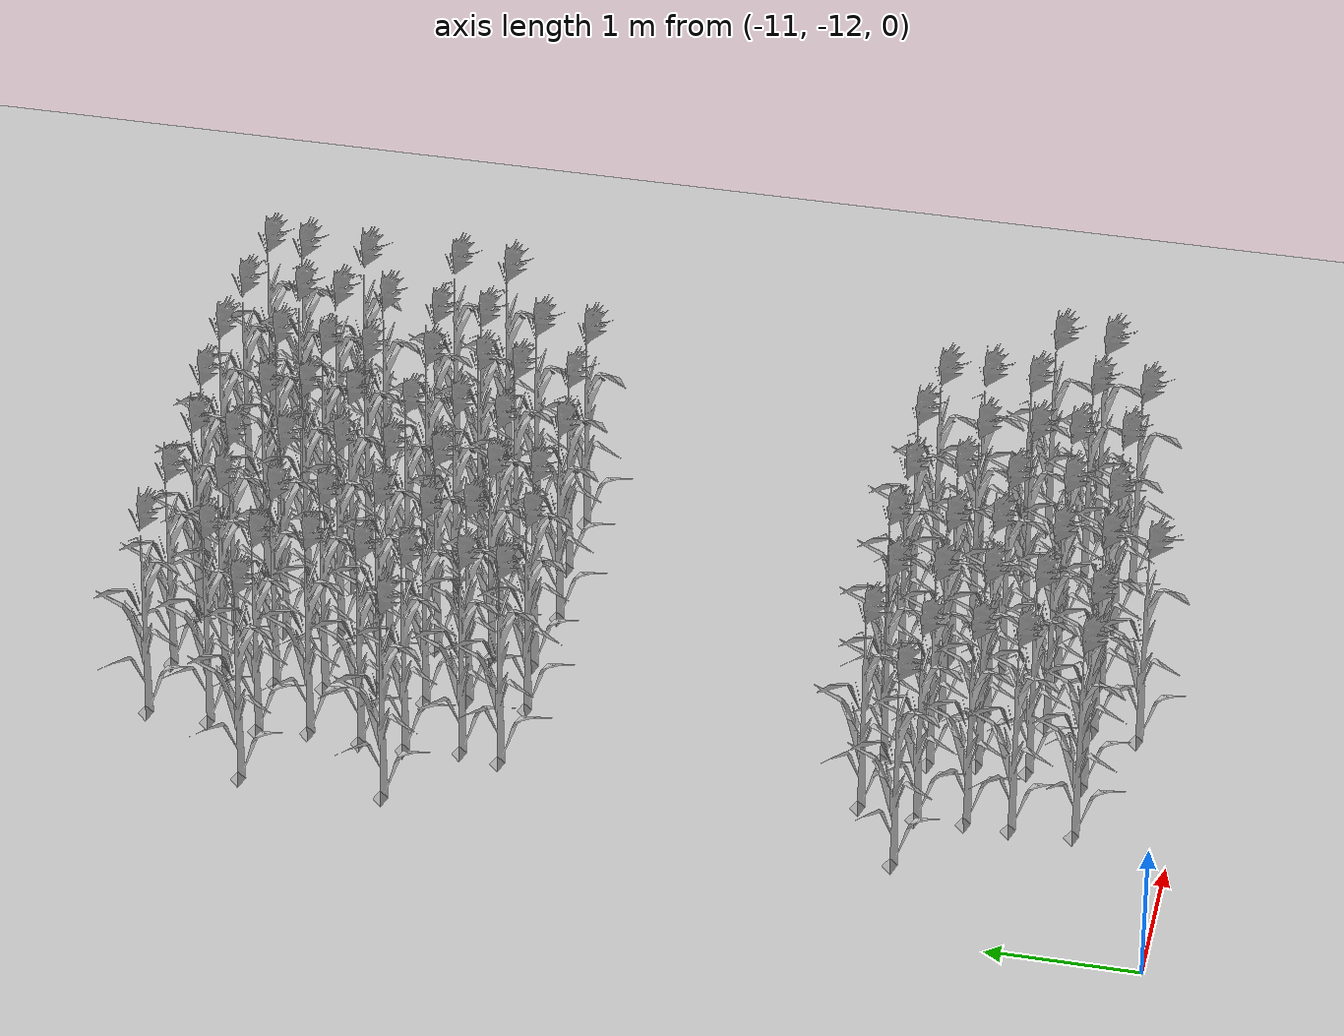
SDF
<sdf version="1.7">
 <world name="farmland_world">
  <model name="ground_plane">
   <static>1</static>
   <link name="link">
    <collision name="collision">
     <geometry><plane><normal>0 0 1</normal><size>40.0 40.0</size></plane></geometry>
     <surface><friction><ode><mu>100</mu><mu2>50</mu2></ode></friction></surface>
    </collision>
    <visual name="visual">
     <cast_shadows>0</cast_shadows>
     <geometry><plane><normal>0 0 1</normal><size>40.0 40.0</size></plane></geometry>
     <material>
      <script><uri>file://media/materials/scripts/gazebo.material</uri><name>Gazebo/Grey</name></script>
     </material>
    </visual>
   </link>
  </model>
  <model name="tree_3_2026">
   <static>1</static>
   <link name="link">
    <collision name="collision">
     <geometry><mesh><uri>model://Corn_low_poly/corn.obj</uri><scale>1 1 1</scale></mesh></geometry>
     <surface><friction><ode><mu>100</mu><mu2>50</mu2></ode></friction></surface>
    </collision>
    <visual name="visual">
     <geometry><mesh><uri>model://Corn_low_poly/corn.obj</uri><scale>1 1 1</scale></mesh></geometry>
    </visual>
   </link>
   <pose>-6.713987771388239 -11.040436678086664 0 0 0 0</pose>
  </model>
  <model name="tree_3_2027">
   <static>1</static>
   <link name="link">
    <collision name="collision">
     <geometry><mesh><uri>model://Corn_low_poly/corn.obj</uri><scale>1 1 1</scale></mesh></geometry>
     <surface><friction><ode><mu>100</mu><mu2>50</mu2></ode></friction></surface>
    </collision>
    <visual name="visual">
     <geometry><mesh><uri>model://Corn_low_poly/corn.obj</uri><scale>1 1 1</scale></mesh></geometry>
    </visual>
   </link>
   <pose>-7.170069629986875 -11.021712198344856 0 0 0 0</pose>
  </model>
  <model name="tree_3_2028">
   <static>1</static>
   <link name="link">
    <collision name="collision">
     <geometry><mesh><uri>model://Corn_low_poly/corn.obj</uri><scale>1 1 1</scale></mesh></geometry>
     <surface><friction><ode><mu>100</mu><mu2>50</mu2></ode></friction></surface>
    </collision>
    <visual name="visual">
     <geometry><mesh><uri>model://Corn_low_poly/corn.obj</uri><scale>1 1 1</scale></mesh></geometry>
    </visual>
   </link>
   <pose>-7.707092013171887 -10.965578937062764 0 0 0 0</pose>
  </model>
  <model name="tree_3_2029">
   <static>1</static>
   <link name="link">
    <collision name="collision">
     <geometry><mesh><uri>model://Corn_low_poly/corn.obj</uri><scale>1 1 1</scale></mesh></geometry>
     <surface><friction><ode><mu>100</mu><mu2>50</mu2></ode></friction></surface>
    </collision>
    <visual name="visual">
     <geometry><mesh><uri>model://Corn_low_poly/corn.obj</uri><scale>1 1 1</scale></mesh></geometry>
    </visual>
   </link>
   <pose>-8.223203388048246 -11.00556573251546 0 0 0 0</pose>
  </model>
  <model name="tree_3_2030">
   <static>1</static>
   <link name="link">
    <collision name="collision">
     <geometry><mesh><uri>model://Corn_low_poly/corn.obj</uri><scale>1 1 1</scale></mesh></geometry>
     <surface><friction><ode><mu>100</mu><mu2>50</mu2></ode></friction></surface>
    </collision>
    <visual name="visual">
     <geometry><mesh><uri>model://Corn_low_poly/corn.obj</uri><scale>1 1 1</scale></mesh></geometry>
    </visual>
   </link>
   <pose>-8.744473124421058 -11.017615286946793 0 0 0 0</pose>
  </model>
  <model name="tree_3_2031">
   <static>1</static>
   <link name="link">
    <collision name="collision">
     <geometry><mesh><uri>model://Corn_low_poly/corn.obj</uri><scale>1 1 1</scale></mesh></geometry>
     <surface><friction><ode><mu>100</mu><mu2>50</mu2></ode></friction></surface>
    </collision>
    <visual name="visual">
     <geometry><mesh><uri>model://Corn_low_poly/corn.obj</uri><scale>1 1 1</scale></mesh></geometry>
    </visual>
   </link>
   <pose>-9.233699887846186 -10.979449062698754 0 0 0 0</pose>
  </model>
  <model name="tree_3_2032">
   <static>1</static>
   <link name="link">
    <collision name="collision">
     <geometry><mesh><uri>model://Corn_low_poly/corn.obj</uri><scale>1 1 1</scale></mesh></geometry>
     <surface><friction><ode><mu>100</mu><mu2>50</mu2></ode></friction></surface>
    </collision>
    <visual name="visual">
     <geometry><mesh><uri>model://Corn_low_poly/corn.obj</uri><scale>1 1 1</scale></mesh></geometry>
    </visual>
   </link>
   <pose>-9.81466445602937 -10.958606718387514 0 0 0 0</pose>
  </model>
  <model name="tree_3_2061">
   <static>1</static>
   <link name="link">
    <collision name="collision">
     <geometry><mesh><uri>model://Corn_low_poly/corn.obj</uri><scale>1 1 1</scale></mesh></geometry>
     <surface><friction><ode><mu>100</mu><mu2>50</mu2></ode></friction></surface>
    </collision>
    <visual name="visual">
     <geometry><mesh><uri>model://Corn_low_poly/corn.obj</uri><scale>1 1 1</scale></mesh></geometry>
    </visual>
   </link>
   <pose>-7.187153272394503 -11.348321001129824 0 0 0 0</pose>
  </model>
  <model name="tree_3_2062">
   <static>1</static>
   <link name="link">
    <collision name="collision">
     <geometry><mesh><uri>model://Corn_low_poly/corn.obj</uri><scale>1 1 1</scale></mesh></geometry>
     <surface><friction><ode><mu>100</mu><mu2>50</mu2></ode></friction></surface>
    </collision>
    <visual name="visual">
     <geometry><mesh><uri>model://Corn_low_poly/corn.obj</uri><scale>1 1 1</scale></mesh></geometry>
    </visual>
   </link>
   <pose>-7.678289146353365 -11.296198535919972 0 0 0 0</pose>
  </model>
  <model name="tree_3_2063">
   <static>1</static>
   <link name="link">
    <collision name="collision">
     <geometry><mesh><uri>model://Corn_low_poly/corn.obj</uri><scale>1 1 1</scale></mesh></geometry>
     <surface><friction><ode><mu>100</mu><mu2>50</mu2></ode></friction></surface>
    </collision>
    <visual name="visual">
     <geometry><mesh><uri>model://Corn_low_poly/corn.obj</uri><scale>1 1 1</scale></mesh></geometry>
    </visual>
   </link>
   <pose>-8.268231560659562 -11.301532199227344 0 0 0 0</pose>
  </model>
  <model name="tree_3_2064">
   <static>1</static>
   <link name="link">
    <collision name="collision">
     <geometry><mesh><uri>model://Corn_low_poly/corn.obj</uri><scale>1 1 1</scale></mesh></geometry>
     <surface><friction><ode><mu>100</mu><mu2>50</mu2></ode></friction></surface>
    </collision>
    <visual name="visual">
     <geometry><mesh><uri>model://Corn_low_poly/corn.obj</uri><scale>1 1 1</scale></mesh></geometry>
    </visual>
   </link>
   <pose>-8.739041165692472 -11.327774644668105 0 0 0 0</pose>
  </model>
  <model name="tree_3_2065">
   <static>1</static>
   <link name="link">
    <collision name="collision">
     <geometry><mesh><uri>model://Corn_low_poly/corn.obj</uri><scale>1 1 1</scale></mesh></geometry>
     <surface><friction><ode><mu>100</mu><mu2>50</mu2></ode></friction></surface>
    </collision>
    <visual name="visual">
     <geometry><mesh><uri>model://Corn_low_poly/corn.obj</uri><scale>1 1 1</scale></mesh></geometry>
    </visual>
   </link>
   <pose>-9.31111151003318 -11.34614491399398 0 0 0 0</pose>
  </model>
  <model name="tree_3_2066">
   <static>1</static>
   <link name="link">
    <collision name="collision">
     <geometry><mesh><uri>model://Corn_low_poly/corn.obj</uri><scale>1 1 1</scale></mesh></geometry>
     <surface><friction><ode><mu>100</mu><mu2>50</mu2></ode></friction></surface>
    </collision>
    <visual name="visual">
     <geometry><mesh><uri>model://Corn_low_poly/corn.obj</uri><scale>1 1 1</scale></mesh></geometry>
    </visual>
   </link>
   <pose>-9.796232664142419 -11.363982110689113 0 0 0 0</pose>
  </model>
  <model name="tree_3_2098">
   <static>1</static>
   <link name="link">
    <collision name="collision">
     <geometry><mesh><uri>model://Corn_low_poly/corn.obj</uri><scale>1 1 1</scale></mesh></geometry>
     <surface><friction><ode><mu>100</mu><mu2>50</mu2></ode></friction></surface>
    </collision>
    <visual name="visual">
     <geometry><mesh><uri>model://Corn_low_poly/corn.obj</uri><scale>1 1 1</scale></mesh></geometry>
    </visual>
   </link>
   <pose>-8.784118833880223 -11.625639258244046 0 0 0 0</pose>
  </model>
  <model name="tree_3_2129">
   <static>1</static>
   <link name="link">
    <collision name="collision">
     <geometry><mesh><uri>model://Corn_low_poly/corn.obj</uri><scale>1 1 1</scale></mesh></geometry>
     <surface><friction><ode><mu>100</mu><mu2>50</mu2></ode></friction></surface>
    </collision>
    <visual name="visual">
     <geometry><mesh><uri>model://Corn_low_poly/corn.obj</uri><scale>1 1 1</scale></mesh></geometry>
    </visual>
   </link>
   <pose>-7.253003676641794 -10.032679340570365 0 0 0 0</pose>
  </model>
  <model name="tree_3_2130">
   <static>1</static>
   <link name="link">
    <collision name="collision">
     <geometry><mesh><uri>model://Corn_low_poly/corn.obj</uri><scale>1 1 1</scale></mesh></geometry>
     <surface><friction><ode><mu>100</mu><mu2>50</mu2></ode></friction></surface>
    </collision>
    <visual name="visual">
     <geometry><mesh><uri>model://Corn_low_poly/corn.obj</uri><scale>1 1 1</scale></mesh></geometry>
    </visual>
   </link>
   <pose>-7.698730288540326 -9.957208224281656 0 0 0 0</pose>
  </model>
  <model name="tree_3_2131">
   <static>1</static>
   <link name="link">
    <collision name="collision">
     <geometry><mesh><uri>model://Corn_low_poly/corn.obj</uri><scale>1 1 1</scale></mesh></geometry>
     <surface><friction><ode><mu>100</mu><mu2>50</mu2></ode></friction></surface>
    </collision>
    <visual name="visual">
     <geometry><mesh><uri>model://Corn_low_poly/corn.obj</uri><scale>1 1 1</scale></mesh></geometry>
    </visual>
   </link>
   <pose>-8.271461147682986 -9.981504382100185 0 0 0 0</pose>
  </model>
  <model name="tree_3_2132">
   <static>1</static>
   <link name="link">
    <collision name="collision">
     <geometry><mesh><uri>model://Corn_low_poly/corn.obj</uri><scale>1 1 1</scale></mesh></geometry>
     <surface><friction><ode><mu>100</mu><mu2>50</mu2></ode></friction></surface>
    </collision>
    <visual name="visual">
     <geometry><mesh><uri>model://Corn_low_poly/corn.obj</uri><scale>1 1 1</scale></mesh></geometry>
    </visual>
   </link>
   <pose>-8.772892968912764 -9.958078417165234 0 0 0 0</pose>
  </model>
  <model name="tree_3_2133">
   <static>1</static>
   <link name="link">
    <collision name="collision">
     <geometry><mesh><uri>model://Corn_low_poly/corn.obj</uri><scale>1 1 1</scale></mesh></geometry>
     <surface><friction><ode><mu>100</mu><mu2>50</mu2></ode></friction></surface>
    </collision>
    <visual name="visual">
     <geometry><mesh><uri>model://Corn_low_poly/corn.obj</uri><scale>1 1 1</scale></mesh></geometry>
    </visual>
   </link>
   <pose>-9.289754353603282 -10.04418401191558 0 0 0 0</pose>
  </model>
  <model name="tree_3_2134">
   <static>1</static>
   <link name="link">
    <collision name="collision">
     <geometry><mesh><uri>model://Corn_low_poly/corn.obj</uri><scale>1 1 1</scale></mesh></geometry>
     <surface><friction><ode><mu>100</mu><mu2>50</mu2></ode></friction></surface>
    </collision>
    <visual name="visual">
     <geometry><mesh><uri>model://Corn_low_poly/corn.obj</uri><scale>1 1 1</scale></mesh></geometry>
    </visual>
   </link>
   <pose>-9.777281978584496 -9.981790289452828 0 0 0 0</pose>
  </model>
  <model name="tree_3_2163">
   <static>1</static>
   <link name="link">
    <collision name="collision">
     <geometry><mesh><uri>model://Corn_low_poly/corn.obj</uri><scale>1 1 1</scale></mesh></geometry>
     <surface><friction><ode><mu>100</mu><mu2>50</mu2></ode></friction></surface>
    </collision>
    <visual name="visual">
     <geometry><mesh><uri>model://Corn_low_poly/corn.obj</uri><scale>1 1 1</scale></mesh></geometry>
    </visual>
   </link>
   <pose>-7.206512040298854 -10.31812870471933 0 0 0 0</pose>
  </model>
  <model name="tree_3_2164">
   <static>1</static>
   <link name="link">
    <collision name="collision">
     <geometry><mesh><uri>model://Corn_low_poly/corn.obj</uri><scale>1 1 1</scale></mesh></geometry>
     <surface><friction><ode><mu>100</mu><mu2>50</mu2></ode></friction></surface>
    </collision>
    <visual name="visual">
     <geometry><mesh><uri>model://Corn_low_poly/corn.obj</uri><scale>1 1 1</scale></mesh></geometry>
    </visual>
   </link>
   <pose>-7.765027463036141 -10.37106197165101 0 0 0 0</pose>
  </model>
  <model name="tree_3_2165">
   <static>1</static>
   <link name="link">
    <collision name="collision">
     <geometry><mesh><uri>model://Corn_low_poly/corn.obj</uri><scale>1 1 1</scale></mesh></geometry>
     <surface><friction><ode><mu>100</mu><mu2>50</mu2></ode></friction></surface>
    </collision>
    <visual name="visual">
     <geometry><mesh><uri>model://Corn_low_poly/corn.obj</uri><scale>1 1 1</scale></mesh></geometry>
    </visual>
   </link>
   <pose>-8.19258654004304 -10.299527062183751 0 0 0 0</pose>
  </model>
  <model name="tree_3_2166">
   <static>1</static>
   <link name="link">
    <collision name="collision">
     <geometry><mesh><uri>model://Corn_low_poly/corn.obj</uri><scale>1 1 1</scale></mesh></geometry>
     <surface><friction><ode><mu>100</mu><mu2>50</mu2></ode></friction></surface>
    </collision>
    <visual name="visual">
     <geometry><mesh><uri>model://Corn_low_poly/corn.obj</uri><scale>1 1 1</scale></mesh></geometry>
    </visual>
   </link>
   <pose>-8.755902247413959 -10.331962641836316 0 0 0 0</pose>
  </model>
  <model name="tree_3_2167">
   <static>1</static>
   <link name="link">
    <collision name="collision">
     <geometry><mesh><uri>model://Corn_low_poly/corn.obj</uri><scale>1 1 1</scale></mesh></geometry>
     <surface><friction><ode><mu>100</mu><mu2>50</mu2></ode></friction></surface>
    </collision>
    <visual name="visual">
     <geometry><mesh><uri>model://Corn_low_poly/corn.obj</uri><scale>1 1 1</scale></mesh></geometry>
    </visual>
   </link>
   <pose>-9.275298499650408 -10.341205168163617 0 0 0 0</pose>
  </model>
  <model name="tree_3_2168">
   <static>1</static>
   <link name="link">
    <collision name="collision">
     <geometry><mesh><uri>model://Corn_low_poly/corn.obj</uri><scale>1 1 1</scale></mesh></geometry>
     <surface><friction><ode><mu>100</mu><mu2>50</mu2></ode></friction></surface>
    </collision>
    <visual name="visual">
     <geometry><mesh><uri>model://Corn_low_poly/corn.obj</uri><scale>1 1 1</scale></mesh></geometry>
    </visual>
   </link>
   <pose>-9.822250675962518 -10.349644332923527 0 0 0 0</pose>
  </model>
  <model name="tree_3_2169">
   <static>1</static>
   <link name="link">
    <collision name="collision">
     <geometry><mesh><uri>model://Corn_low_poly/corn.obj</uri><scale>1 1 1</scale></mesh></geometry>
     <surface><friction><ode><mu>100</mu><mu2>50</mu2></ode></friction></surface>
    </collision>
    <visual name="visual">
     <geometry><mesh><uri>model://Corn_low_poly/corn.obj</uri><scale>1 1 1</scale></mesh></geometry>
    </visual>
   </link>
   <pose>-10.289452895367786 -10.281471923795298 0 0 0 0</pose>
  </model>
  <model name="tree_3_2196">
   <static>1</static>
   <link name="link">
    <collision name="collision">
     <geometry><mesh><uri>model://Corn_low_poly/corn.obj</uri><scale>1 1 1</scale></mesh></geometry>
     <surface><friction><ode><mu>100</mu><mu2>50</mu2></ode></friction></surface>
    </collision>
    <visual name="visual">
     <geometry><mesh><uri>model://Corn_low_poly/corn.obj</uri><scale>1 1 1</scale></mesh></geometry>
    </visual>
   </link>
   <pose>-6.723077463601715 -10.709334611375617 0 0 0 0</pose>
  </model>
  <model name="tree_3_2197">
   <static>1</static>
   <link name="link">
    <collision name="collision">
     <geometry><mesh><uri>model://Corn_low_poly/corn.obj</uri><scale>1 1 1</scale></mesh></geometry>
     <surface><friction><ode><mu>100</mu><mu2>50</mu2></ode></friction></surface>
    </collision>
    <visual name="visual">
     <geometry><mesh><uri>model://Corn_low_poly/corn.obj</uri><scale>1 1 1</scale></mesh></geometry>
    </visual>
   </link>
   <pose>-7.21793926798852 -10.622178567975562 0 0 0 0</pose>
  </model>
  <model name="tree_3_2198">
   <static>1</static>
   <link name="link">
    <collision name="collision">
     <geometry><mesh><uri>model://Corn_low_poly/corn.obj</uri><scale>1 1 1</scale></mesh></geometry>
     <surface><friction><ode><mu>100</mu><mu2>50</mu2></ode></friction></surface>
    </collision>
    <visual name="visual">
     <geometry><mesh><uri>model://Corn_low_poly/corn.obj</uri><scale>1 1 1</scale></mesh></geometry>
    </visual>
   </link>
   <pose>-7.731044608758324 -10.711212221169795 0 0 0 0</pose>
  </model>
  <model name="tree_3_2199">
   <static>1</static>
   <link name="link">
    <collision name="collision">
     <geometry><mesh><uri>model://Corn_low_poly/corn.obj</uri><scale>1 1 1</scale></mesh></geometry>
     <surface><friction><ode><mu>100</mu><mu2>50</mu2></ode></friction></surface>
    </collision>
    <visual name="visual">
     <geometry><mesh><uri>model://Corn_low_poly/corn.obj</uri><scale>1 1 1</scale></mesh></geometry>
    </visual>
   </link>
   <pose>-8.250087386351218 -10.645200546693358 0 0 0 0</pose>
  </model>
  <model name="tree_3_2200">
   <static>1</static>
   <link name="link">
    <collision name="collision">
     <geometry><mesh><uri>model://Corn_low_poly/corn.obj</uri><scale>1 1 1</scale></mesh></geometry>
     <surface><friction><ode><mu>100</mu><mu2>50</mu2></ode></friction></surface>
    </collision>
    <visual name="visual">
     <geometry><mesh><uri>model://Corn_low_poly/corn.obj</uri><scale>1 1 1</scale></mesh></geometry>
    </visual>
   </link>
   <pose>-8.710291079633667 -10.621806189473489 0 0 0 0</pose>
  </model>
  <model name="tree_3_2201">
   <static>1</static>
   <link name="link">
    <collision name="collision">
     <geometry><mesh><uri>model://Corn_low_poly/corn.obj</uri><scale>1 1 1</scale></mesh></geometry>
     <surface><friction><ode><mu>100</mu><mu2>50</mu2></ode></friction></surface>
    </collision>
    <visual name="visual">
     <geometry><mesh><uri>model://Corn_low_poly/corn.obj</uri><scale>1 1 1</scale></mesh></geometry>
    </visual>
   </link>
   <pose>-9.226956009412119 -10.650704738698392 0 0 0 0</pose>
  </model>
  <model name="tree_3_2202">
   <static>1</static>
   <link name="link">
    <collision name="collision">
     <geometry><mesh><uri>model://Corn_low_poly/corn.obj</uri><scale>1 1 1</scale></mesh></geometry>
     <surface><friction><ode><mu>100</mu><mu2>50</mu2></ode></friction></surface>
    </collision>
    <visual name="visual">
     <geometry><mesh><uri>model://Corn_low_poly/corn.obj</uri><scale>1 1 1</scale></mesh></geometry>
    </visual>
   </link>
   <pose>-9.806422924225053 -10.668963463028167 0 0 0 0</pose>
  </model>
  <model name="tree_3_2230">
   <static>1</static>
   <link name="link">
    <collision name="collision">
     <geometry><mesh><uri>model://Corn_low_poly/corn.obj</uri><scale>1 1 1</scale></mesh></geometry>
     <surface><friction><ode><mu>100</mu><mu2>50</mu2></ode></friction></surface>
    </collision>
    <visual name="visual">
     <geometry><mesh><uri>model://Corn_low_poly/corn.obj</uri><scale>1 1 1</scale></mesh></geometry>
    </visual>
   </link>
   <pose>-6.698770898212721 -7.0135309337105705 0 0 0 0</pose>
  </model>
  <model name="tree_3_2231">
   <static>1</static>
   <link name="link">
    <collision name="collision">
     <geometry><mesh><uri>model://Corn_low_poly/corn.obj</uri><scale>1 1 1</scale></mesh></geometry>
     <surface><friction><ode><mu>100</mu><mu2>50</mu2></ode></friction></surface>
    </collision>
    <visual name="visual">
     <geometry><mesh><uri>model://Corn_low_poly/corn.obj</uri><scale>1 1 1</scale></mesh></geometry>
    </visual>
   </link>
   <pose>-7.226326635829651 -6.956767826596275 0 0 0 0</pose>
  </model>
  <model name="tree_3_2232">
   <static>1</static>
   <link name="link">
    <collision name="collision">
     <geometry><mesh><uri>model://Corn_low_poly/corn.obj</uri><scale>1 1 1</scale></mesh></geometry>
     <surface><friction><ode><mu>100</mu><mu2>50</mu2></ode></friction></surface>
    </collision>
    <visual name="visual">
     <geometry><mesh><uri>model://Corn_low_poly/corn.obj</uri><scale>1 1 1</scale></mesh></geometry>
    </visual>
   </link>
   <pose>-7.69813619342048 -7.04262959539145 0 0 0 0</pose>
  </model>
  <model name="tree_3_2233">
   <static>1</static>
   <link name="link">
    <collision name="collision">
     <geometry><mesh><uri>model://Corn_low_poly/corn.obj</uri><scale>1 1 1</scale></mesh></geometry>
     <surface><friction><ode><mu>100</mu><mu2>50</mu2></ode></friction></surface>
    </collision>
    <visual name="visual">
     <geometry><mesh><uri>model://Corn_low_poly/corn.obj</uri><scale>1 1 1</scale></mesh></geometry>
    </visual>
   </link>
   <pose>-8.198979463050549 -6.990502138744421 0 0 0 0</pose>
  </model>
  <model name="tree_3_2234">
   <static>1</static>
   <link name="link">
    <collision name="collision">
     <geometry><mesh><uri>model://Corn_low_poly/corn.obj</uri><scale>1 1 1</scale></mesh></geometry>
     <surface><friction><ode><mu>100</mu><mu2>50</mu2></ode></friction></surface>
    </collision>
    <visual name="visual">
     <geometry><mesh><uri>model://Corn_low_poly/corn.obj</uri><scale>1 1 1</scale></mesh></geometry>
    </visual>
   </link>
   <pose>-8.751375531219429 -6.9866231152696034 0 0 0 0</pose>
  </model>
  <model name="tree_3_2235">
   <static>1</static>
   <link name="link">
    <collision name="collision">
     <geometry><mesh><uri>model://Corn_low_poly/corn.obj</uri><scale>1 1 1</scale></mesh></geometry>
     <surface><friction><ode><mu>100</mu><mu2>50</mu2></ode></friction></surface>
    </collision>
    <visual name="visual">
     <geometry><mesh><uri>model://Corn_low_poly/corn.obj</uri><scale>1 1 1</scale></mesh></geometry>
    </visual>
   </link>
   <pose>-9.303486657886475 -7.032187139929857 0 0 0 0</pose>
  </model>
  <model name="tree_3_2236">
   <static>1</static>
   <link name="link">
    <collision name="collision">
     <geometry><mesh><uri>model://Corn_low_poly/corn.obj</uri><scale>1 1 1</scale></mesh></geometry>
     <surface><friction><ode><mu>100</mu><mu2>50</mu2></ode></friction></surface>
    </collision>
    <visual name="visual">
     <geometry><mesh><uri>model://Corn_low_poly/corn.obj</uri><scale>1 1 1</scale></mesh></geometry>
    </visual>
   </link>
   <pose>-9.79878532255996 -7.009020684361177 0 0 0 0</pose>
  </model>
  <model name="tree_3_2237">
   <static>1</static>
   <link name="link">
    <collision name="collision">
     <geometry><mesh><uri>model://Corn_low_poly/corn.obj</uri><scale>1 1 1</scale></mesh></geometry>
     <surface><friction><ode><mu>100</mu><mu2>50</mu2></ode></friction></surface>
    </collision>
    <visual name="visual">
     <geometry><mesh><uri>model://Corn_low_poly/corn.obj</uri><scale>1 1 1</scale></mesh></geometry>
    </visual>
   </link>
   <pose>-10.286600134505534 -6.9792327969359675 0 0 0 0</pose>
  </model>
  <model name="tree_3_2265">
   <static>1</static>
   <link name="link">
    <collision name="collision">
     <geometry><mesh><uri>model://Corn_low_poly/corn.obj</uri><scale>1 1 1</scale></mesh></geometry>
     <surface><friction><ode><mu>100</mu><mu2>50</mu2></ode></friction></surface>
    </collision>
    <visual name="visual">
     <geometry><mesh><uri>model://Corn_low_poly/corn.obj</uri><scale>1 1 1</scale></mesh></geometry>
    </visual>
   </link>
   <pose>-7.25311876452878 -7.331419577621844 0 0 0 0</pose>
  </model>
  <model name="tree_3_2266">
   <static>1</static>
   <link name="link">
    <collision name="collision">
     <geometry><mesh><uri>model://Corn_low_poly/corn.obj</uri><scale>1 1 1</scale></mesh></geometry>
     <surface><friction><ode><mu>100</mu><mu2>50</mu2></ode></friction></surface>
    </collision>
    <visual name="visual">
     <geometry><mesh><uri>model://Corn_low_poly/corn.obj</uri><scale>1 1 1</scale></mesh></geometry>
    </visual>
   </link>
   <pose>-7.74477911115244 -7.295107528703173 0 0 0 0</pose>
  </model>
  <model name="tree_3_2267">
   <static>1</static>
   <link name="link">
    <collision name="collision">
     <geometry><mesh><uri>model://Corn_low_poly/corn.obj</uri><scale>1 1 1</scale></mesh></geometry>
     <surface><friction><ode><mu>100</mu><mu2>50</mu2></ode></friction></surface>
    </collision>
    <visual name="visual">
     <geometry><mesh><uri>model://Corn_low_poly/corn.obj</uri><scale>1 1 1</scale></mesh></geometry>
    </visual>
   </link>
   <pose>-8.286075267826892 -7.298568402195418 0 0 0 0</pose>
  </model>
  <model name="tree_3_2268">
   <static>1</static>
   <link name="link">
    <collision name="collision">
     <geometry><mesh><uri>model://Corn_low_poly/corn.obj</uri><scale>1 1 1</scale></mesh></geometry>
     <surface><friction><ode><mu>100</mu><mu2>50</mu2></ode></friction></surface>
    </collision>
    <visual name="visual">
     <geometry><mesh><uri>model://Corn_low_poly/corn.obj</uri><scale>1 1 1</scale></mesh></geometry>
    </visual>
   </link>
   <pose>-8.789255988396633 -7.356927621319704 0 0 0 0</pose>
  </model>
  <model name="tree_3_2269">
   <static>1</static>
   <link name="link">
    <collision name="collision">
     <geometry><mesh><uri>model://Corn_low_poly/corn.obj</uri><scale>1 1 1</scale></mesh></geometry>
     <surface><friction><ode><mu>100</mu><mu2>50</mu2></ode></friction></surface>
    </collision>
    <visual name="visual">
     <geometry><mesh><uri>model://Corn_low_poly/corn.obj</uri><scale>1 1 1</scale></mesh></geometry>
    </visual>
   </link>
   <pose>-9.230324422350998 -7.302117422503469 0 0 0 0</pose>
  </model>
  <model name="tree_3_2270">
   <static>1</static>
   <link name="link">
    <collision name="collision">
     <geometry><mesh><uri>model://Corn_low_poly/corn.obj</uri><scale>1 1 1</scale></mesh></geometry>
     <surface><friction><ode><mu>100</mu><mu2>50</mu2></ode></friction></surface>
    </collision>
    <visual name="visual">
     <geometry><mesh><uri>model://Corn_low_poly/corn.obj</uri><scale>1 1 1</scale></mesh></geometry>
    </visual>
   </link>
   <pose>-9.752435112883116 -7.374505249193505 0 0 0 0</pose>
  </model>
  <model name="tree_3_2299">
   <static>1</static>
   <link name="link">
    <collision name="collision">
     <geometry><mesh><uri>model://Corn_low_poly/corn.obj</uri><scale>1 1 1</scale></mesh></geometry>
     <surface><friction><ode><mu>100</mu><mu2>50</mu2></ode></friction></surface>
    </collision>
    <visual name="visual">
     <geometry><mesh><uri>model://Corn_low_poly/corn.obj</uri><scale>1 1 1</scale></mesh></geometry>
    </visual>
   </link>
   <pose>-7.261861514970897 -7.672763095786835 0 0 0 0</pose>
  </model>
  <model name="tree_3_2300">
   <static>1</static>
   <link name="link">
    <collision name="collision">
     <geometry><mesh><uri>model://Corn_low_poly/corn.obj</uri><scale>1 1 1</scale></mesh></geometry>
     <surface><friction><ode><mu>100</mu><mu2>50</mu2></ode></friction></surface>
    </collision>
    <visual name="visual">
     <geometry><mesh><uri>model://Corn_low_poly/corn.obj</uri><scale>1 1 1</scale></mesh></geometry>
    </visual>
   </link>
   <pose>-7.761879935347265 -7.657065346063629 0 0 0 0</pose>
  </model>
  <model name="tree_3_2301">
   <static>1</static>
   <link name="link">
    <collision name="collision">
     <geometry><mesh><uri>model://Corn_low_poly/corn.obj</uri><scale>1 1 1</scale></mesh></geometry>
     <surface><friction><ode><mu>100</mu><mu2>50</mu2></ode></friction></surface>
    </collision>
    <visual name="visual">
     <geometry><mesh><uri>model://Corn_low_poly/corn.obj</uri><scale>1 1 1</scale></mesh></geometry>
    </visual>
   </link>
   <pose>-8.282583834543074 -7.704041617344423 0 0 0 0</pose>
  </model>
  <model name="tree_3_2302">
   <static>1</static>
   <link name="link">
    <collision name="collision">
     <geometry><mesh><uri>model://Corn_low_poly/corn.obj</uri><scale>1 1 1</scale></mesh></geometry>
     <surface><friction><ode><mu>100</mu><mu2>50</mu2></ode></friction></surface>
    </collision>
    <visual name="visual">
     <geometry><mesh><uri>model://Corn_low_poly/corn.obj</uri><scale>1 1 1</scale></mesh></geometry>
    </visual>
   </link>
   <pose>-8.798758004144842 -7.644634693590907 0 0 0 0</pose>
  </model>
  <model name="tree_3_2303">
   <static>1</static>
   <link name="link">
    <collision name="collision">
     <geometry><mesh><uri>model://Corn_low_poly/corn.obj</uri><scale>1 1 1</scale></mesh></geometry>
     <surface><friction><ode><mu>100</mu><mu2>50</mu2></ode></friction></surface>
    </collision>
    <visual name="visual">
     <geometry><mesh><uri>model://Corn_low_poly/corn.obj</uri><scale>1 1 1</scale></mesh></geometry>
    </visual>
   </link>
   <pose>-9.248127139442216 -7.69521689688319 0 0 0 0</pose>
  </model>
  <model name="tree_3_2304">
   <static>1</static>
   <link name="link">
    <collision name="collision">
     <geometry><mesh><uri>model://Corn_low_poly/corn.obj</uri><scale>1 1 1</scale></mesh></geometry>
     <surface><friction><ode><mu>100</mu><mu2>50</mu2></ode></friction></surface>
    </collision>
    <visual name="visual">
     <geometry><mesh><uri>model://Corn_low_poly/corn.obj</uri><scale>1 1 1</scale></mesh></geometry>
    </visual>
   </link>
   <pose>-9.802273474081025 -7.63698740169789 0 0 0 0</pose>
  </model>
  <model name="tree_3_2332">
   <static>1</static>
   <link name="link">
    <collision name="collision">
     <geometry><mesh><uri>model://Corn_low_poly/corn.obj</uri><scale>1 1 1</scale></mesh></geometry>
     <surface><friction><ode><mu>100</mu><mu2>50</mu2></ode></friction></surface>
    </collision>
    <visual name="visual">
     <geometry><mesh><uri>model://Corn_low_poly/corn.obj</uri><scale>1 1 1</scale></mesh></geometry>
    </visual>
   </link>
   <pose>-6.724908936228364 -6.042613655115731 0 0 0 0</pose>
  </model>
  <model name="tree_3_2333">
   <static>1</static>
   <link name="link">
    <collision name="collision">
     <geometry><mesh><uri>model://Corn_low_poly/corn.obj</uri><scale>1 1 1</scale></mesh></geometry>
     <surface><friction><ode><mu>100</mu><mu2>50</mu2></ode></friction></surface>
    </collision>
    <visual name="visual">
     <geometry><mesh><uri>model://Corn_low_poly/corn.obj</uri><scale>1 1 1</scale></mesh></geometry>
    </visual>
   </link>
   <pose>-7.18111789514575 -5.961812313448463 0 0 0 0</pose>
  </model>
  <model name="tree_3_2334">
   <static>1</static>
   <link name="link">
    <collision name="collision">
     <geometry><mesh><uri>model://Corn_low_poly/corn.obj</uri><scale>1 1 1</scale></mesh></geometry>
     <surface><friction><ode><mu>100</mu><mu2>50</mu2></ode></friction></surface>
    </collision>
    <visual name="visual">
     <geometry><mesh><uri>model://Corn_low_poly/corn.obj</uri><scale>1 1 1</scale></mesh></geometry>
    </visual>
   </link>
   <pose>-7.720472444700468 -5.996980003184679 0 0 0 0</pose>
  </model>
  <model name="tree_3_2335">
   <static>1</static>
   <link name="link">
    <collision name="collision">
     <geometry><mesh><uri>model://Corn_low_poly/corn.obj</uri><scale>1 1 1</scale></mesh></geometry>
     <surface><friction><ode><mu>100</mu><mu2>50</mu2></ode></friction></surface>
    </collision>
    <visual name="visual">
     <geometry><mesh><uri>model://Corn_low_poly/corn.obj</uri><scale>1 1 1</scale></mesh></geometry>
    </visual>
   </link>
   <pose>-8.198766572140272 -5.978488704130343 0 0 0 0</pose>
  </model>
  <model name="tree_3_2336">
   <static>1</static>
   <link name="link">
    <collision name="collision">
     <geometry><mesh><uri>model://Corn_low_poly/corn.obj</uri><scale>1 1 1</scale></mesh></geometry>
     <surface><friction><ode><mu>100</mu><mu2>50</mu2></ode></friction></surface>
    </collision>
    <visual name="visual">
     <geometry><mesh><uri>model://Corn_low_poly/corn.obj</uri><scale>1 1 1</scale></mesh></geometry>
    </visual>
   </link>
   <pose>-8.774139729727725 -5.972468023247055 0 0 0 0</pose>
  </model>
  <model name="tree_3_2337">
   <static>1</static>
   <link name="link">
    <collision name="collision">
     <geometry><mesh><uri>model://Corn_low_poly/corn.obj</uri><scale>1 1 1</scale></mesh></geometry>
     <surface><friction><ode><mu>100</mu><mu2>50</mu2></ode></friction></surface>
    </collision>
    <visual name="visual">
     <geometry><mesh><uri>model://Corn_low_poly/corn.obj</uri><scale>1 1 1</scale></mesh></geometry>
    </visual>
   </link>
   <pose>-9.305118791070297 -6.035673815797491 0 0 0 0</pose>
  </model>
  <model name="tree_3_2338">
   <static>1</static>
   <link name="link">
    <collision name="collision">
     <geometry><mesh><uri>model://Corn_low_poly/corn.obj</uri><scale>1 1 1</scale></mesh></geometry>
     <surface><friction><ode><mu>100</mu><mu2>50</mu2></ode></friction></surface>
    </collision>
    <visual name="visual">
     <geometry><mesh><uri>model://Corn_low_poly/corn.obj</uri><scale>1 1 1</scale></mesh></geometry>
    </visual>
   </link>
   <pose>-9.796173830188682 -6.036012532074695 0 0 0 0</pose>
  </model>
  <model name="tree_3_2339">
   <static>1</static>
   <link name="link">
    <collision name="collision">
     <geometry><mesh><uri>model://Corn_low_poly/corn.obj</uri><scale>1 1 1</scale></mesh></geometry>
     <surface><friction><ode><mu>100</mu><mu2>50</mu2></ode></friction></surface>
    </collision>
    <visual name="visual">
     <geometry><mesh><uri>model://Corn_low_poly/corn.obj</uri><scale>1 1 1</scale></mesh></geometry>
    </visual>
   </link>
   <pose>-10.28055702676481 -6.040541266310699 0 0 0 0</pose>
  </model>
  <model name="tree_3_2367">
   <static>1</static>
   <link name="link">
    <collision name="collision">
     <geometry><mesh><uri>model://Corn_low_poly/corn.obj</uri><scale>1 1 1</scale></mesh></geometry>
     <surface><friction><ode><mu>100</mu><mu2>50</mu2></ode></friction></surface>
    </collision>
    <visual name="visual">
     <geometry><mesh><uri>model://Corn_low_poly/corn.obj</uri><scale>1 1 1</scale></mesh></geometry>
    </visual>
   </link>
   <pose>-7.172059517086976 -6.280381060710417 0 0 0 0</pose>
  </model>
  <model name="tree_3_2368">
   <static>1</static>
   <link name="link">
    <collision name="collision">
     <geometry><mesh><uri>model://Corn_low_poly/corn.obj</uri><scale>1 1 1</scale></mesh></geometry>
     <surface><friction><ode><mu>100</mu><mu2>50</mu2></ode></friction></surface>
    </collision>
    <visual name="visual">
     <geometry><mesh><uri>model://Corn_low_poly/corn.obj</uri><scale>1 1 1</scale></mesh></geometry>
    </visual>
   </link>
   <pose>-7.742131804847298 -6.288954924029342 0 0 0 0</pose>
  </model>
  <model name="tree_3_2369">
   <static>1</static>
   <link name="link">
    <collision name="collision">
     <geometry><mesh><uri>model://Corn_low_poly/corn.obj</uri><scale>1 1 1</scale></mesh></geometry>
     <surface><friction><ode><mu>100</mu><mu2>50</mu2></ode></friction></surface>
    </collision>
    <visual name="visual">
     <geometry><mesh><uri>model://Corn_low_poly/corn.obj</uri><scale>1 1 1</scale></mesh></geometry>
    </visual>
   </link>
   <pose>-8.221603340540883 -6.296085204643022 0 0 0 0</pose>
  </model>
  <model name="tree_3_2370">
   <static>1</static>
   <link name="link">
    <collision name="collision">
     <geometry><mesh><uri>model://Corn_low_poly/corn.obj</uri><scale>1 1 1</scale></mesh></geometry>
     <surface><friction><ode><mu>100</mu><mu2>50</mu2></ode></friction></surface>
    </collision>
    <visual name="visual">
     <geometry><mesh><uri>model://Corn_low_poly/corn.obj</uri><scale>1 1 1</scale></mesh></geometry>
    </visual>
   </link>
   <pose>-8.721454925598396 -6.3314944267171915 0 0 0 0</pose>
  </model>
  <model name="tree_3_2371">
   <static>1</static>
   <link name="link">
    <collision name="collision">
     <geometry><mesh><uri>model://Corn_low_poly/corn.obj</uri><scale>1 1 1</scale></mesh></geometry>
     <surface><friction><ode><mu>100</mu><mu2>50</mu2></ode></friction></surface>
    </collision>
    <visual name="visual">
     <geometry><mesh><uri>model://Corn_low_poly/corn.obj</uri><scale>1 1 1</scale></mesh></geometry>
    </visual>
   </link>
   <pose>-9.29429845984116 -6.358931774829207 0 0 0 0</pose>
  </model>
  <model name="tree_3_2372">
   <static>1</static>
   <link name="link">
    <collision name="collision">
     <geometry><mesh><uri>model://Corn_low_poly/corn.obj</uri><scale>1 1 1</scale></mesh></geometry>
     <surface><friction><ode><mu>100</mu><mu2>50</mu2></ode></friction></surface>
    </collision>
    <visual name="visual">
     <geometry><mesh><uri>model://Corn_low_poly/corn.obj</uri><scale>1 1 1</scale></mesh></geometry>
    </visual>
   </link>
   <pose>-9.751729188099102 -6.368948132573094 0 0 0 0</pose>
  </model>
  <model name="tree_3_2400">
   <static>1</static>
   <link name="link">
    <collision name="collision">
     <geometry><mesh><uri>model://Corn_low_poly/corn.obj</uri><scale>1 1 1</scale></mesh></geometry>
     <surface><friction><ode><mu>100</mu><mu2>50</mu2></ode></friction></surface>
    </collision>
    <visual name="visual">
     <geometry><mesh><uri>model://Corn_low_poly/corn.obj</uri><scale>1 1 1</scale></mesh></geometry>
    </visual>
   </link>
   <pose>-6.68513019879895 -6.653154342249386 0 0 0 0</pose>
  </model>
  <model name="tree_3_2401">
   <static>1</static>
   <link name="link">
    <collision name="collision">
     <geometry><mesh><uri>model://Corn_low_poly/corn.obj</uri><scale>1 1 1</scale></mesh></geometry>
     <surface><friction><ode><mu>100</mu><mu2>50</mu2></ode></friction></surface>
    </collision>
    <visual name="visual">
     <geometry><mesh><uri>model://Corn_low_poly/corn.obj</uri><scale>1 1 1</scale></mesh></geometry>
    </visual>
   </link>
   <pose>-7.250823782924779 -6.646526707772338 0 0 0 0</pose>
  </model>
  <model name="tree_3_2402">
   <static>1</static>
   <link name="link">
    <collision name="collision">
     <geometry><mesh><uri>model://Corn_low_poly/corn.obj</uri><scale>1 1 1</scale></mesh></geometry>
     <surface><friction><ode><mu>100</mu><mu2>50</mu2></ode></friction></surface>
    </collision>
    <visual name="visual">
     <geometry><mesh><uri>model://Corn_low_poly/corn.obj</uri><scale>1 1 1</scale></mesh></geometry>
    </visual>
   </link>
   <pose>-7.711269660451734 -6.694657048765907 0 0 0 0</pose>
  </model>
  <model name="tree_3_2403">
   <static>1</static>
   <link name="link">
    <collision name="collision">
     <geometry><mesh><uri>model://Corn_low_poly/corn.obj</uri><scale>1 1 1</scale></mesh></geometry>
     <surface><friction><ode><mu>100</mu><mu2>50</mu2></ode></friction></surface>
    </collision>
    <visual name="visual">
     <geometry><mesh><uri>model://Corn_low_poly/corn.obj</uri><scale>1 1 1</scale></mesh></geometry>
    </visual>
   </link>
   <pose>-8.242475350058275 -6.676348345518365 0 0 0 0</pose>
  </model>
  <model name="tree_3_2404">
   <static>1</static>
   <link name="link">
    <collision name="collision">
     <geometry><mesh><uri>model://Corn_low_poly/corn.obj</uri><scale>1 1 1</scale></mesh></geometry>
     <surface><friction><ode><mu>100</mu><mu2>50</mu2></ode></friction></surface>
    </collision>
    <visual name="visual">
     <geometry><mesh><uri>model://Corn_low_poly/corn.obj</uri><scale>1 1 1</scale></mesh></geometry>
    </visual>
   </link>
   <pose>-8.732442953635138 -6.659176232959014 0 0 0 0</pose>
  </model>
  <model name="tree_3_2405">
   <static>1</static>
   <link name="link">
    <collision name="collision">
     <geometry><mesh><uri>model://Corn_low_poly/corn.obj</uri><scale>1 1 1</scale></mesh></geometry>
     <surface><friction><ode><mu>100</mu><mu2>50</mu2></ode></friction></surface>
    </collision>
    <visual name="visual">
     <geometry><mesh><uri>model://Corn_low_poly/corn.obj</uri><scale>1 1 1</scale></mesh></geometry>
    </visual>
   </link>
   <pose>-9.223873627669166 -6.704866253544798 0 0 0 0</pose>
  </model>
  <model name="tree_3_2406">
   <static>1</static>
   <link name="link">
    <collision name="collision">
     <geometry><mesh><uri>model://Corn_low_poly/corn.obj</uri><scale>1 1 1</scale></mesh></geometry>
     <surface><friction><ode><mu>100</mu><mu2>50</mu2></ode></friction></surface>
    </collision>
    <visual name="visual">
     <geometry><mesh><uri>model://Corn_low_poly/corn.obj</uri><scale>1 1 1</scale></mesh></geometry>
    </visual>
   </link>
   <pose>-9.787564852682573 -6.7152257187867015 0 0 0 0</pose>
  </model>
  <model name="tree_3_2468">
   <static>1</static>
   <link name="link">
    <collision name="collision">
     <geometry><mesh><uri>model://Corn_low_poly/corn.obj</uri><scale>1 1 1</scale></mesh></geometry>
     <surface><friction><ode><mu>100</mu><mu2>50</mu2></ode></friction></surface>
    </collision>
    <visual name="visual">
     <geometry><mesh><uri>model://Corn_low_poly/corn.obj</uri><scale>1 1 1</scale></mesh></geometry>
    </visual>
   </link>
   <pose>-6.690049055104397 -5.378447989272954 0 0 0 0</pose>
  </model>
  <model name="tree_3_2469">
   <static>1</static>
   <link name="link">
    <collision name="collision">
     <geometry><mesh><uri>model://Corn_low_poly/corn.obj</uri><scale>1 1 1</scale></mesh></geometry>
     <surface><friction><ode><mu>100</mu><mu2>50</mu2></ode></friction></surface>
    </collision>
    <visual name="visual">
     <geometry><mesh><uri>model://Corn_low_poly/corn.obj</uri><scale>1 1 1</scale></mesh></geometry>
    </visual>
   </link>
   <pose>-7.186752504573577 -5.326880004788807 0 0 0 0</pose>
  </model>
  <model name="tree_3_2470">
   <static>1</static>
   <link name="link">
    <collision name="collision">
     <geometry><mesh><uri>model://Corn_low_poly/corn.obj</uri><scale>1 1 1</scale></mesh></geometry>
     <surface><friction><ode><mu>100</mu><mu2>50</mu2></ode></friction></surface>
    </collision>
    <visual name="visual">
     <geometry><mesh><uri>model://Corn_low_poly/corn.obj</uri><scale>1 1 1</scale></mesh></geometry>
    </visual>
   </link>
   <pose>-7.680774719022783 -5.293069433767363 0 0 0 0</pose>
  </model>
  <model name="tree_3_2471">
   <static>1</static>
   <link name="link">
    <collision name="collision">
     <geometry><mesh><uri>model://Corn_low_poly/corn.obj</uri><scale>1 1 1</scale></mesh></geometry>
     <surface><friction><ode><mu>100</mu><mu2>50</mu2></ode></friction></surface>
    </collision>
    <visual name="visual">
     <geometry><mesh><uri>model://Corn_low_poly/corn.obj</uri><scale>1 1 1</scale></mesh></geometry>
    </visual>
   </link>
   <pose>-8.203642943955328 -5.298125527989629 0 0 0 0</pose>
  </model>
  <model name="tree_3_2472">
   <static>1</static>
   <link name="link">
    <collision name="collision">
     <geometry><mesh><uri>model://Corn_low_poly/corn.obj</uri><scale>1 1 1</scale></mesh></geometry>
     <surface><friction><ode><mu>100</mu><mu2>50</mu2></ode></friction></surface>
    </collision>
    <visual name="visual">
     <geometry><mesh><uri>model://Corn_low_poly/corn.obj</uri><scale>1 1 1</scale></mesh></geometry>
    </visual>
   </link>
   <pose>-8.717686650796045 -5.371566369466712 0 0 0 0</pose>
  </model>
  <model name="tree_3_2473">
   <static>1</static>
   <link name="link">
    <collision name="collision">
     <geometry><mesh><uri>model://Corn_low_poly/corn.obj</uri><scale>1 1 1</scale></mesh></geometry>
     <surface><friction><ode><mu>100</mu><mu2>50</mu2></ode></friction></surface>
    </collision>
    <visual name="visual">
     <geometry><mesh><uri>model://Corn_low_poly/corn.obj</uri><scale>1 1 1</scale></mesh></geometry>
    </visual>
   </link>
   <pose>-9.244005570535407 -5.3305398848004995 0 0 0 0</pose>
  </model>
  <model name="tree_3_2474">
   <static>1</static>
   <link name="link">
    <collision name="collision">
     <geometry><mesh><uri>model://Corn_low_poly/corn.obj</uri><scale>1 1 1</scale></mesh></geometry>
     <surface><friction><ode><mu>100</mu><mu2>50</mu2></ode></friction></surface>
    </collision>
    <visual name="visual">
     <geometry><mesh><uri>model://Corn_low_poly/corn.obj</uri><scale>1 1 1</scale></mesh></geometry>
    </visual>
   </link>
   <pose>-9.753503792525457 -5.295088093402763 0 0 0 0</pose>
  </model>
  <model name="tree_3_2502">
   <static>1</static>
   <link name="link">
    <collision name="collision">
     <geometry><mesh><uri>model://Corn_low_poly/corn.obj</uri><scale>1 1 1</scale></mesh></geometry>
     <surface><friction><ode><mu>100</mu><mu2>50</mu2></ode></friction></surface>
    </collision>
    <visual name="visual">
     <geometry><mesh><uri>model://Corn_low_poly/corn.obj</uri><scale>1 1 1</scale></mesh></geometry>
    </visual>
   </link>
   <pose>-6.710678879283481 -5.620088311161723 0 0 0 0</pose>
  </model>
  <model name="tree_3_2503">
   <static>1</static>
   <link name="link">
    <collision name="collision">
     <geometry><mesh><uri>model://Corn_low_poly/corn.obj</uri><scale>1 1 1</scale></mesh></geometry>
     <surface><friction><ode><mu>100</mu><mu2>50</mu2></ode></friction></surface>
    </collision>
    <visual name="visual">
     <geometry><mesh><uri>model://Corn_low_poly/corn.obj</uri><scale>1 1 1</scale></mesh></geometry>
    </visual>
   </link>
   <pose>-7.176292450343079 -5.7068384671946735 0 0 0 0</pose>
  </model>
  <model name="tree_3_2504">
   <static>1</static>
   <link name="link">
    <collision name="collision">
     <geometry><mesh><uri>model://Corn_low_poly/corn.obj</uri><scale>1 1 1</scale></mesh></geometry>
     <surface><friction><ode><mu>100</mu><mu2>50</mu2></ode></friction></surface>
    </collision>
    <visual name="visual">
     <geometry><mesh><uri>model://Corn_low_poly/corn.obj</uri><scale>1 1 1</scale></mesh></geometry>
    </visual>
   </link>
   <pose>-7.682879808691221 -5.67437881860588 0 0 0 0</pose>
  </model>
  <model name="tree_3_2505">
   <static>1</static>
   <link name="link">
    <collision name="collision">
     <geometry><mesh><uri>model://Corn_low_poly/corn.obj</uri><scale>1 1 1</scale></mesh></geometry>
     <surface><friction><ode><mu>100</mu><mu2>50</mu2></ode></friction></surface>
    </collision>
    <visual name="visual">
     <geometry><mesh><uri>model://Corn_low_poly/corn.obj</uri><scale>1 1 1</scale></mesh></geometry>
    </visual>
   </link>
   <pose>-8.246380099458035 -5.719283737513581 0 0 0 0</pose>
  </model>
  <model name="tree_3_2506">
   <static>1</static>
   <link name="link">
    <collision name="collision">
     <geometry><mesh><uri>model://Corn_low_poly/corn.obj</uri><scale>1 1 1</scale></mesh></geometry>
     <surface><friction><ode><mu>100</mu><mu2>50</mu2></ode></friction></surface>
    </collision>
    <visual name="visual">
     <geometry><mesh><uri>model://Corn_low_poly/corn.obj</uri><scale>1 1 1</scale></mesh></geometry>
    </visual>
   </link>
   <pose>-8.79859930112919 -5.634835019382087 0 0 0 0</pose>
  </model>
  <model name="tree_3_2507">
   <static>1</static>
   <link name="link">
    <collision name="collision">
     <geometry><mesh><uri>model://Corn_low_poly/corn.obj</uri><scale>1 1 1</scale></mesh></geometry>
     <surface><friction><ode><mu>100</mu><mu2>50</mu2></ode></friction></surface>
    </collision>
    <visual name="visual">
     <geometry><mesh><uri>model://Corn_low_poly/corn.obj</uri><scale>1 1 1</scale></mesh></geometry>
    </visual>
   </link>
   <pose>-9.25381572648627 -5.678555495403678 0 0 0 0</pose>
  </model>
  <model name="tree_3_2508">
   <static>1</static>
   <link name="link">
    <collision name="collision">
     <geometry><mesh><uri>model://Corn_low_poly/corn.obj</uri><scale>1 1 1</scale></mesh></geometry>
     <surface><friction><ode><mu>100</mu><mu2>50</mu2></ode></friction></surface>
    </collision>
    <visual name="visual">
     <geometry><mesh><uri>model://Corn_low_poly/corn.obj</uri><scale>1 1 1</scale></mesh></geometry>
    </visual>
   </link>
   <pose>-9.771282521377517 -5.707774628596943 0 0 0 0</pose>
  </model>
 </world>
</sdf>
